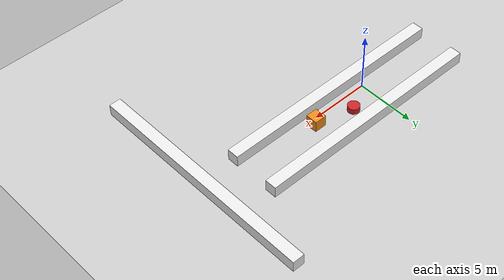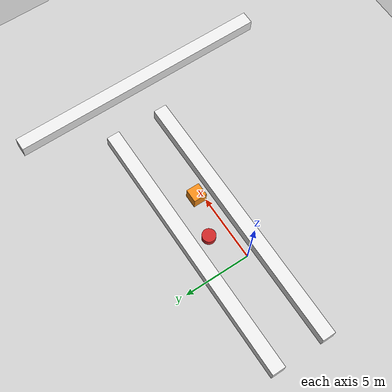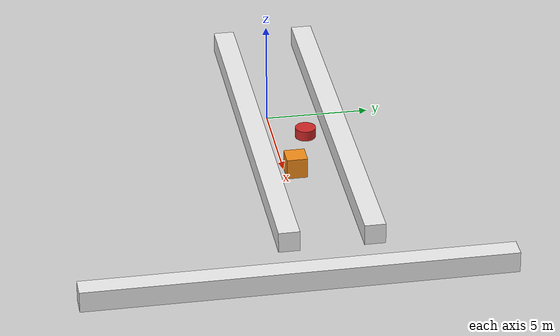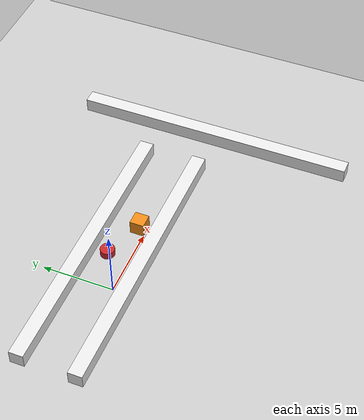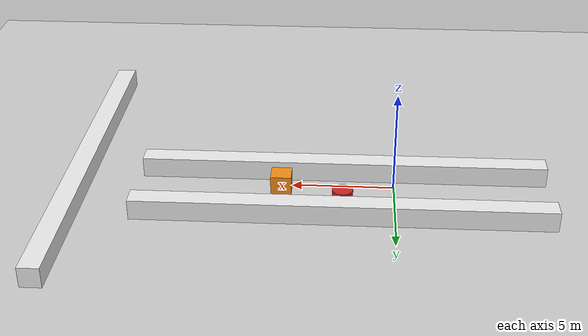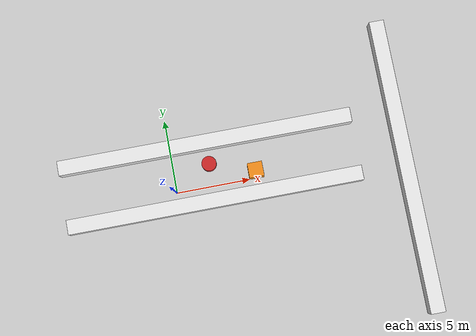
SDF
<sdf version="1.7">
 <world name="default">
  <light name="sun" type="directional">
   <pose>0 0 10 0 -0 0</pose>
   <diffuse>0.8 0.8 0.8 1</diffuse>
   <specular>0.2 0.2 0.2 1</specular>
   <attenuation>
    <range>1000</range>
    <constant>0.9</constant>
    <linear>0.01</linear>
    <quadratic>0.001</quadratic>
   </attenuation>
   <direction>-0.5 0.1 -0.9</direction>
   <spot><inner_angle>0</inner_angle><outer_angle>0</outer_angle><falloff>0</falloff></spot>
  </light>
  <model name="ground_plane">
   <static>1</static>
   <link name="link">
    <collision name="collision">
     <geometry><plane><normal>0 0 1</normal><size>100 100</size></plane></geometry>
     <surface><friction><ode><mu>100</mu><mu2>50</mu2></ode></friction></surface>
    </collision>
    <visual name="visual">
     <cast_shadows>0</cast_shadows>
     <geometry><plane><normal>0 0 1</normal><size>100 100</size></plane></geometry>
     <material>
      <script><uri>file://media/materials/scripts/gazebo.material</uri><name>Gazebo/Grey</name></script>
     </material>
    </visual>
   </link>
  </model>
  <gravity>0 0 -9.8</gravity>
  <magnetic_field>6e-06 2.3e-05 -4.2e-05</magnetic_field>
  <atmosphere type="adiabatic"/>
  <physics type="ode">
   <max_step_size>0.001</max_step_size>
   <real_time_factor>1</real_time_factor>
   <real_time_update_rate>1000</real_time_update_rate>
  </physics>
  <scene><ambient>0.4 0.4 0.4 1</ambient><background>0.7 0.7 0.7 1</background><shadows>1</shadows></scene>
  <audio><device>default</device></audio>
  <spherical_coordinates>
   <surface_model>EARTH_WGS84</surface_model>
   <latitude_deg>0</latitude_deg>
   <longitude_deg>0</longitude_deg>
   <elevation>0</elevation>
   <heading_deg>0</heading_deg>
  </spherical_coordinates>
  <model name="cylinder">
   <pose>2.5 1.5 0.5 0 -0 0</pose>
   <link name="link">
    <inertial>
     <mass>8</mass>
     <inertia><ixx>0.66667</ixx><ixy>0</ixy><ixz>0</ixz><iyy>0.666667</iyy><iyz>0</iyz><izz>1.0</izz></inertia>
    </inertial>
    <collision name="collision">
     <geometry><cylinder><radius>0.5</radius><length>0.5</length></cylinder></geometry>
    </collision>
    <visual name="visual">
     <geometry><cylinder><radius>0.5</radius><length>0.5</length></cylinder></geometry>
     <material>
      <script><name>Gazebo/Red</name><uri>file://media/materials/scripts/gazebo.material</uri></script>
     </material>
    </visual>
   </link>
  </model>
  <model name="box">
   <pose>5.5 0.5 0.5 0 -0 0</pose>
   <link name="link">
    <inertial>
     <mass>10</mass>
     <inertia><ixx>1.66667</ixx><ixy>0</ixy><ixz>0</ixz><iyy>1.66667</iyy><iyz>0</iyz><izz>1.66667</izz></inertia>
    </inertial>
    <collision name="collision"><geometry><box><size>1 1 1</size></box></geometry></collision>
    <visual name="visual">
     <geometry><box><size>1 1 1</size></box></geometry>
     <material>
      <script><name>Gazebo/Orange</name><uri>file://media/materials/scripts/gazebo.material</uri></script>
     </material>
    </visual>
   </link>
  </model>
  <model name="wall_left">
   <pose>2.5 3.0 0.5 0 -0 0</pose>
   <link name="link">
    <inertial>
     <mass>100</mass>
     <inertia>
      <ixx>16.66667</ixx>
      <ixy>0</ixy>
      <ixz>0</ixz>
      <iyy>3341.66667</iyy>
      <iyz>0</iyz>
      <izz>3341.66667</izz>
     </inertia>
    </inertial>
    <collision name="collision"><geometry><box><size>20 1 1</size></box></geometry></collision>
    <visual name="visual">
     <geometry><box><size>20 1 1</size></box></geometry>
     <material>
      <script><name>Gazebo/White</name><uri>file://media/materials/scripts/gazebo.material</uri></script>
     </material>
    </visual>
   </link>
  </model>
  <model name="wall_right">
   <pose>2.5 -1.0 0.5 0 -0 0</pose>
   <link name="link">
    <inertial>
     <mass>100</mass>
     <inertia>
      <ixx>16.66667</ixx>
      <ixy>0</ixy>
      <ixz>0</ixz>
      <iyy>3341.66667</iyy>
      <iyz>0</iyz>
      <izz>3341.66667</izz>
     </inertia>
    </inertial>
    <collision name="collision"><geometry><box><size>20 1 1</size></box></geometry></collision>
    <visual name="visual">
     <geometry><box><size>20 1 1</size></box></geometry>
     <material>
      <script><name>Gazebo/White</name><uri>file://media/materials/scripts/gazebo.material</uri></script>
     </material>
    </visual>
   </link>
  </model>
  <model name="wall_front">
   <pose>15.5 -1.0 0.5 0 -0 0</pose>
   <link name="link">
    <inertial>
     <mass>100</mass>
     <inertia>
      <ixx>3341.66667</ixx>
      <ixy>0</ixy>
      <ixz>0</ixz>
      <iyy>16.66667</iyy>
      <iyz>0</iyz>
      <izz>3341.66667</izz>
     </inertia>
    </inertial>
    <collision name="collision"><geometry><box><size>1 20 1</size></box></geometry></collision>
    <visual name="visual">
     <geometry><box><size>1 20 1</size></box></geometry>
     <material>
      <script><name>Gazebo/White</name><uri>file://media/materials/scripts/gazebo.material</uri></script>
     </material>
    </visual>
   </link>
  </model>
 </world>
</sdf>
